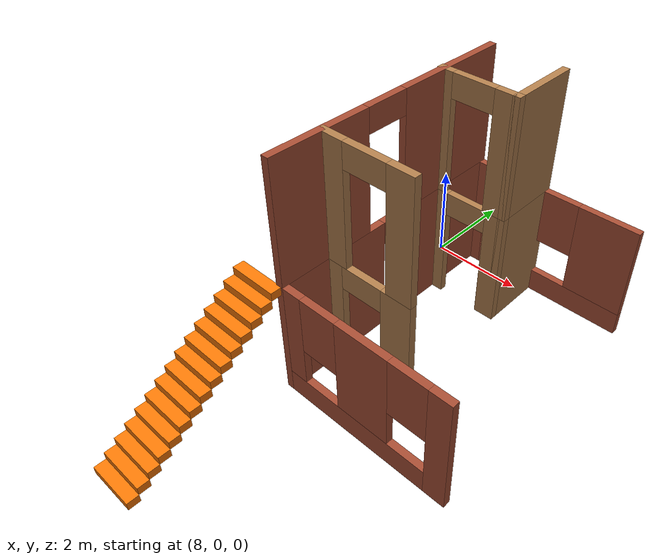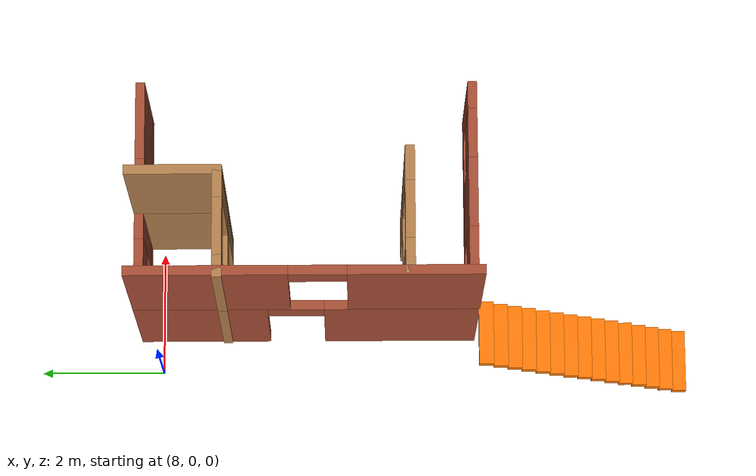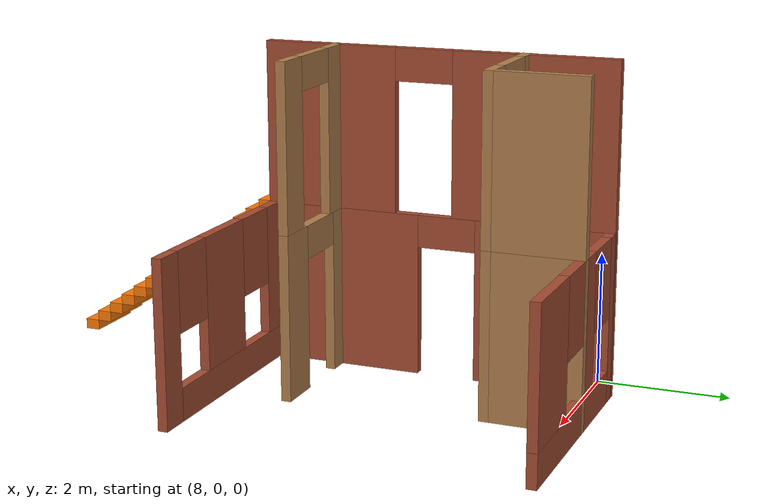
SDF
<sdf version="1.6">
 <model name="Building">
  <pose>-0.047811 -4.11763 0 0 -0 0</pose>
  <link name="Stairs_2">
   <visual name="Stairs_2_Visual_0">
    <pose>8.19045 -4.38108 0.083333 0 -0 -3.14159</pose>
    <geometry><box><size>1 0.233333 0.166667</size></box></geometry>
    <material>
     <script><uri>file://media/materials/scripts/gazebo.material</uri><name>Gazebo/Grey</name></script>
     <ambient>0.996078 0.47451 0.0196078 1</ambient>
    </material>
    <meta><layer>0</layer></meta>
   </visual>
   <collision name="Stairs_2_Collision_0">
    <geometry><box><size>1 0.233333 0.166667</size></box></geometry>
    <pose>8.19045 -4.38108 0.083333 0 -0 -3.14159</pose>
   </collision>
   <visual name="Stairs_2_Visual_1">
    <pose>8.19045 -4.14774 0.25 0 -0 -3.14159</pose>
    <geometry><box><size>1 0.233333 0.166667</size></box></geometry>
    <material>
     <script><uri>file://media/materials/scripts/gazebo.material</uri><name>Gazebo/Grey</name></script>
     <ambient>0.996078 0.47451 0.0196078 1</ambient>
    </material>
    <meta><layer>0</layer></meta>
   </visual>
   <collision name="Stairs_2_Collision_1">
    <geometry><box><size>1 0.233333 0.166667</size></box></geometry>
    <pose>8.19045 -4.14774 0.25 0 -0 -3.14159</pose>
   </collision>
   <visual name="Stairs_2_Visual_2">
    <pose>8.19045 -3.91441 0.416667 0 -0 -3.14159</pose>
    <geometry><box><size>1 0.233333 0.166667</size></box></geometry>
    <material>
     <script><uri>file://media/materials/scripts/gazebo.material</uri><name>Gazebo/Grey</name></script>
     <ambient>0.996078 0.47451 0.0196078 1</ambient>
    </material>
    <meta><layer>0</layer></meta>
   </visual>
   <collision name="Stairs_2_Collision_2">
    <geometry><box><size>1 0.233333 0.166667</size></box></geometry>
    <pose>8.19045 -3.91441 0.416667 0 -0 -3.14159</pose>
   </collision>
   <visual name="Stairs_2_Visual_3">
    <pose>8.19045 -3.68108 0.583333 0 -0 -3.14159</pose>
    <geometry><box><size>1 0.233333 0.166667</size></box></geometry>
    <material>
     <script><uri>file://media/materials/scripts/gazebo.material</uri><name>Gazebo/Grey</name></script>
     <ambient>0.996078 0.47451 0.0196078 1</ambient>
    </material>
    <meta><layer>0</layer></meta>
   </visual>
   <collision name="Stairs_2_Collision_3">
    <geometry><box><size>1 0.233333 0.166667</size></box></geometry>
    <pose>8.19045 -3.68108 0.583333 0 -0 -3.14159</pose>
   </collision>
   <visual name="Stairs_2_Visual_4">
    <pose>8.19045 -3.44774 0.75 0 -0 -3.14159</pose>
    <geometry><box><size>1 0.233333 0.166667</size></box></geometry>
    <material>
     <script><uri>file://media/materials/scripts/gazebo.material</uri><name>Gazebo/Grey</name></script>
     <ambient>0.996078 0.47451 0.0196078 1</ambient>
    </material>
    <meta><layer>0</layer></meta>
   </visual>
   <collision name="Stairs_2_Collision_4">
    <geometry><box><size>1 0.233333 0.166667</size></box></geometry>
    <pose>8.19045 -3.44774 0.75 0 -0 -3.14159</pose>
   </collision>
   <visual name="Stairs_2_Visual_5">
    <pose>8.19045 -3.21441 0.916667 0 -0 -3.14159</pose>
    <geometry><box><size>1 0.233333 0.166667</size></box></geometry>
    <material>
     <script><uri>file://media/materials/scripts/gazebo.material</uri><name>Gazebo/Grey</name></script>
     <ambient>0.996078 0.47451 0.0196078 1</ambient>
    </material>
    <meta><layer>0</layer></meta>
   </visual>
   <collision name="Stairs_2_Collision_5">
    <geometry><box><size>1 0.233333 0.166667</size></box></geometry>
    <pose>8.19045 -3.21441 0.916667 0 -0 -3.14159</pose>
   </collision>
   <visual name="Stairs_2_Visual_6">
    <pose>8.19045 -2.98108 1.08333 0 -0 -3.14159</pose>
    <geometry><box><size>1 0.233333 0.166667</size></box></geometry>
    <material>
     <script><uri>file://media/materials/scripts/gazebo.material</uri><name>Gazebo/Grey</name></script>
     <ambient>0.996078 0.47451 0.0196078 1</ambient>
    </material>
    <meta><layer>0</layer></meta>
   </visual>
   <collision name="Stairs_2_Collision_6">
    <geometry><box><size>1 0.233333 0.166667</size></box></geometry>
    <pose>8.19045 -2.98108 1.08333 0 -0 -3.14159</pose>
   </collision>
   <visual name="Stairs_2_Visual_7">
    <pose>8.19045 -2.74774 1.25 0 -0 -3.14159</pose>
    <geometry><box><size>1 0.233333 0.166667</size></box></geometry>
    <material>
     <script><uri>file://media/materials/scripts/gazebo.material</uri><name>Gazebo/Grey</name></script>
     <ambient>0.996078 0.47451 0.0196078 1</ambient>
    </material>
    <meta><layer>0</layer></meta>
   </visual>
   <collision name="Stairs_2_Collision_7">
    <geometry><box><size>1 0.233333 0.166667</size></box></geometry>
    <pose>8.19045 -2.74774 1.25 0 -0 -3.14159</pose>
   </collision>
   <visual name="Stairs_2_Visual_8">
    <pose>8.19045 -2.51441 1.41667 0 -0 -3.14159</pose>
    <geometry><box><size>1 0.233333 0.166667</size></box></geometry>
    <material>
     <script><uri>file://media/materials/scripts/gazebo.material</uri><name>Gazebo/Grey</name></script>
     <ambient>0.996078 0.47451 0.0196078 1</ambient>
    </material>
    <meta><layer>0</layer></meta>
   </visual>
   <collision name="Stairs_2_Collision_8">
    <geometry><box><size>1 0.233333 0.166667</size></box></geometry>
    <pose>8.19045 -2.51441 1.41667 0 -0 -3.14159</pose>
   </collision>
   <visual name="Stairs_2_Visual_9">
    <pose>8.19045 -2.28108 1.58333 0 -0 -3.14159</pose>
    <geometry><box><size>1 0.233333 0.166667</size></box></geometry>
    <material>
     <script><uri>file://media/materials/scripts/gazebo.material</uri><name>Gazebo/Grey</name></script>
     <ambient>0.996078 0.47451 0.0196078 1</ambient>
    </material>
    <meta><layer>0</layer></meta>
   </visual>
   <collision name="Stairs_2_Collision_9">
    <geometry><box><size>1 0.233333 0.166667</size></box></geometry>
    <pose>8.19045 -2.28108 1.58333 0 -0 -3.14159</pose>
   </collision>
   <visual name="Stairs_2_Visual_10">
    <pose>8.19045 -2.04774 1.75 0 -0 -3.14159</pose>
    <geometry><box><size>1 0.233333 0.166667</size></box></geometry>
    <material>
     <script><uri>file://media/materials/scripts/gazebo.material</uri><name>Gazebo/Grey</name></script>
     <ambient>0.996078 0.47451 0.0196078 1</ambient>
    </material>
    <meta><layer>0</layer></meta>
   </visual>
   <collision name="Stairs_2_Collision_10">
    <geometry><box><size>1 0.233333 0.166667</size></box></geometry>
    <pose>8.19045 -2.04774 1.75 0 -0 -3.14159</pose>
   </collision>
   <visual name="Stairs_2_Visual_11">
    <pose>8.19045 -1.81441 1.91667 0 -0 -3.14159</pose>
    <geometry><box><size>1 0.233333 0.166667</size></box></geometry>
    <material>
     <script><uri>file://media/materials/scripts/gazebo.material</uri><name>Gazebo/Grey</name></script>
     <ambient>0.996078 0.47451 0.0196078 1</ambient>
    </material>
    <meta><layer>0</layer></meta>
   </visual>
   <collision name="Stairs_2_Collision_11">
    <geometry><box><size>1 0.233333 0.166667</size></box></geometry>
    <pose>8.19045 -1.81441 1.91667 0 -0 -3.14159</pose>
   </collision>
   <visual name="Stairs_2_Visual_12">
    <pose>8.19045 -1.58108 2.08333 0 -0 -3.14159</pose>
    <geometry><box><size>1 0.233333 0.166667</size></box></geometry>
    <material>
     <script><uri>file://media/materials/scripts/gazebo.material</uri><name>Gazebo/Grey</name></script>
     <ambient>0.996078 0.47451 0.0196078 1</ambient>
    </material>
    <meta><layer>0</layer></meta>
   </visual>
   <collision name="Stairs_2_Collision_12">
    <geometry><box><size>1 0.233333 0.166667</size></box></geometry>
    <pose>8.19045 -1.58108 2.08333 0 -0 -3.14159</pose>
   </collision>
   <visual name="Stairs_2_Visual_13">
    <pose>8.19045 -1.34774 2.25 0 -0 -3.14159</pose>
    <geometry><box><size>1 0.233333 0.166667</size></box></geometry>
    <material>
     <script><uri>file://media/materials/scripts/gazebo.material</uri><name>Gazebo/Grey</name></script>
     <ambient>0.996078 0.47451 0.0196078 1</ambient>
    </material>
    <meta><layer>0</layer></meta>
   </visual>
   <collision name="Stairs_2_Collision_13">
    <geometry><box><size>1 0.233333 0.166667</size></box></geometry>
    <pose>8.19045 -1.34774 2.25 0 -0 -3.14159</pose>
   </collision>
   <visual name="Stairs_2_Visual_14">
    <pose>8.19045 -1.11441 2.41667 0 -0 -3.14159</pose>
    <geometry><box><size>1 0.233333 0.166667</size></box></geometry>
    <material>
     <script><uri>file://media/materials/scripts/gazebo.material</uri><name>Gazebo/Grey</name></script>
     <ambient>0.996078 0.47451 0.0196078 1</ambient>
    </material>
    <meta><layer>0</layer></meta>
   </visual>
   <collision name="Stairs_2_Collision_14">
    <geometry><box><size>1 0.233333 0.166667</size></box></geometry>
    <pose>8.19045 -1.11441 2.41667 0 -0 -3.14159</pose>
   </collision>
  </link>
  <link name="Wall_25">
   <pose>8.65306 1.73144 0 0 -0 1.5708</pose>
   <visual name="Wall_25_Visual_0">
    <pose>-1.51497 0 1.25 0 -0 0</pose>
    <geometry><box><size>2.47006 0.15 2.5</size></box></geometry>
    <material>
     <script><uri>file://media/materials/scripts/gazebo.material</uri><name>Gazebo/Bricks</name></script>
     <ambient>1 1 1 1</ambient>
    </material>
    <meta><layer>0</layer></meta>
   </visual>
   <collision name="Wall_25_Collision_0">
    <geometry><box><size>2.47006 0.15 2.5</size></box></geometry>
    <pose>-1.51497 0 1.25 0 -0 0</pose>
   </collision>
   <visual name="Wall_25_Visual_1">
    <pose>1.68503 0 1.25 0 -0 0</pose>
    <geometry><box><size>2.12994 0.15 2.5</size></box></geometry>
    <material>
     <script><uri>file://media/materials/scripts/gazebo.material</uri><name>Gazebo/Bricks</name></script>
     <ambient>1 1 1 1</ambient>
    </material>
    <meta><layer>0</layer></meta>
   </visual>
   <collision name="Wall_25_Collision_1">
    <geometry><box><size>2.12994 0.15 2.5</size></box></geometry>
    <pose>1.68503 0 1.25 0 -0 0</pose>
   </collision>
   <visual name="Wall_25_Visual_2">
    <pose>0.170065 0 2.25 0 -0 0</pose>
    <geometry><box><size>0.9 0.15 0.5</size></box></geometry>
    <material>
     <script><uri>file://media/materials/scripts/gazebo.material</uri><name>Gazebo/Bricks</name></script>
     <ambient>1 1 1 1</ambient>
    </material>
    <meta><layer>0</layer></meta>
   </visual>
   <collision name="Wall_25_Collision_2">
    <geometry><box><size>0.9 0.15 0.5</size></box></geometry>
    <pose>0.170065 0 2.25 0 -0 0</pose>
   </collision>
  </link>
  <link name="Wall_26">
   <pose>10.4531 4.40644 0 0 -0 0</pose>
   <visual name="Wall_26_Visual_0">
    <pose>-1.69054 0 1.25 0 -0 0</pose>
    <geometry><box><size>0.368918 0.15 2.5</size></box></geometry>
    <material>
     <script><uri>file://media/materials/scripts/gazebo.material</uri><name>Gazebo/Bricks</name></script>
     <ambient>1 1 1 1</ambient>
    </material>
    <meta><layer>0</layer></meta>
   </visual>
   <collision name="Wall_26_Collision_0">
    <geometry><box><size>0.368918 0.15 2.5</size></box></geometry>
    <pose>-1.69054 0 1.25 0 -0 0</pose>
   </collision>
   <visual name="Wall_26_Visual_1">
    <pose>0.184459 0 0.25 0 -0 0</pose>
    <geometry><box><size>3.38108 0.15 0.5</size></box></geometry>
    <material>
     <script><uri>file://media/materials/scripts/gazebo.material</uri><name>Gazebo/Bricks</name></script>
     <ambient>1 1 1 1</ambient>
    </material>
    <meta><layer>0</layer></meta>
   </visual>
   <collision name="Wall_26_Collision_1">
    <geometry><box><size>3.38108 0.15 0.5</size></box></geometry>
    <pose>0.184459 0 0.25 0 -0 0</pose>
   </collision>
   <visual name="Wall_26_Visual_2">
    <pose>-0.44686 0 1.5 0 -0 0</pose>
    <geometry><box><size>0.518444 0.15 2</size></box></geometry>
    <material>
     <script><uri>file://media/materials/scripts/gazebo.material</uri><name>Gazebo/Bricks</name></script>
     <ambient>1 1 1 1</ambient>
    </material>
    <meta><layer>0</layer></meta>
   </visual>
   <collision name="Wall_26_Collision_2">
    <geometry><box><size>0.518444 0.15 2</size></box></geometry>
    <pose>-0.44686 0 1.5 0 -0 0</pose>
   </collision>
   <visual name="Wall_26_Visual_3">
    <pose>1.24368 0 1.5 0 -0 0</pose>
    <geometry><box><size>1.26264 0.15 2</size></box></geometry>
    <material>
     <script><uri>file://media/materials/scripts/gazebo.material</uri><name>Gazebo/Bricks</name></script>
     <ambient>1 1 1 1</ambient>
    </material>
    <meta><layer>0</layer></meta>
   </visual>
   <collision name="Wall_26_Collision_3">
    <geometry><box><size>1.26264 0.15 2</size></box></geometry>
    <pose>1.24368 0 1.5 0 -0 0</pose>
   </collision>
   <visual name="Wall_26_Visual_4">
    <pose>-1.10608 0 1.9 0 -0 0</pose>
    <geometry><box><size>0.8 0.15 1.2</size></box></geometry>
    <material>
     <script><uri>file://media/materials/scripts/gazebo.material</uri><name>Gazebo/Bricks</name></script>
     <ambient>1 1 1 1</ambient>
    </material>
    <meta><layer>0</layer></meta>
   </visual>
   <collision name="Wall_26_Collision_4">
    <geometry><box><size>0.8 0.15 1.2</size></box></geometry>
    <pose>-1.10608 0 1.9 0 -0 0</pose>
   </collision>
   <visual name="Wall_26_Visual_5">
    <pose>0.212362 0 1.9 0 -0 0</pose>
    <geometry><box><size>0.8 0.15 1.2</size></box></geometry>
    <material>
     <script><uri>file://media/materials/scripts/gazebo.material</uri><name>Gazebo/Bricks</name></script>
     <ambient>1 1 1 1</ambient>
    </material>
    <meta><layer>0</layer></meta>
   </visual>
   <collision name="Wall_26_Collision_5">
    <geometry><box><size>0.8 0.15 1.2</size></box></geometry>
    <pose>0.212362 0 1.9 0 -0 0</pose>
   </collision>
  </link>
  <link name="Wall_28">
   <pose>10.4531 -0.943557 0 0 -0 3.14159</pose>
   <visual name="Wall_28_Visual_0">
    <pose>-1.64847 0 1.25 0 -0 0</pose>
    <geometry><box><size>0.453066 0.15 2.5</size></box></geometry>
    <material>
     <script><uri>file://media/materials/scripts/gazebo.material</uri><name>Gazebo/Bricks</name></script>
     <ambient>1 1 1 1</ambient>
    </material>
    <meta><layer>0</layer></meta>
   </visual>
   <collision name="Wall_28_Collision_0">
    <geometry><box><size>0.453066 0.15 2.5</size></box></geometry>
    <pose>-1.64847 0 1.25 0 -0 0</pose>
   </collision>
   <visual name="Wall_28_Visual_1">
    <pose>0.226533 0 0.25 0 -0 0</pose>
    <geometry><box><size>3.29693 0.15 0.5</size></box></geometry>
    <material>
     <script><uri>file://media/materials/scripts/gazebo.material</uri><name>Gazebo/Bricks</name></script>
     <ambient>1 1 1 1</ambient>
    </material>
    <meta><layer>0</layer></meta>
   </visual>
   <collision name="Wall_28_Collision_1">
    <geometry><box><size>3.29693 0.15 0.5</size></box></geometry>
    <pose>0.226533 0 0.25 0 -0 0</pose>
   </collision>
   <visual name="Wall_28_Visual_2">
    <pose>-0.050448 0 1.5 0 -0 0</pose>
    <geometry><box><size>1.14297 0.15 2</size></box></geometry>
    <material>
     <script><uri>file://media/materials/scripts/gazebo.material</uri><name>Gazebo/Bricks</name></script>
     <ambient>1 1 1 1</ambient>
    </material>
    <meta><layer>0</layer></meta>
   </visual>
   <collision name="Wall_28_Collision_2">
    <geometry><box><size>1.14297 0.15 2</size></box></geometry>
    <pose>-0.050448 0 1.5 0 -0 0</pose>
   </collision>
   <visual name="Wall_28_Visual_3">
    <pose>1.59802 0 1.5 0 -0 0</pose>
    <geometry><box><size>0.553963 0.15 2</size></box></geometry>
    <material>
     <script><uri>file://media/materials/scripts/gazebo.material</uri><name>Gazebo/Bricks</name></script>
     <ambient>1 1 1 1</ambient>
    </material>
    <meta><layer>0</layer></meta>
   </visual>
   <collision name="Wall_28_Collision_3">
    <geometry><box><size>0.553963 0.15 2</size></box></geometry>
    <pose>1.59802 0 1.5 0 -0 0</pose>
   </collision>
   <visual name="Wall_28_Visual_4">
    <pose>-1.02193 0 1.9 0 -0 0</pose>
    <geometry><box><size>0.8 0.15 1.2</size></box></geometry>
    <material>
     <script><uri>file://media/materials/scripts/gazebo.material</uri><name>Gazebo/Bricks</name></script>
     <ambient>1 1 1 1</ambient>
    </material>
    <meta><layer>0</layer></meta>
   </visual>
   <collision name="Wall_28_Collision_4">
    <geometry><box><size>0.8 0.15 1.2</size></box></geometry>
    <pose>-1.02193 0 1.9 0 -0 0</pose>
   </collision>
   <visual name="Wall_28_Visual_5">
    <pose>0.921037 0 1.9 0 -0 0</pose>
    <geometry><box><size>0.8 0.15 1.2</size></box></geometry>
    <material>
     <script><uri>file://media/materials/scripts/gazebo.material</uri><name>Gazebo/Bricks</name></script>
     <ambient>1 1 1 1</ambient>
    </material>
    <meta><layer>0</layer></meta>
   </visual>
   <collision name="Wall_28_Collision_5">
    <geometry><box><size>0.8 0.15 1.2</size></box></geometry>
    <pose>0.921037 0 1.9 0 -0 0</pose>
   </collision>
  </link>
  <link name="Wall_30">
   <pose>9.42994 3.05804 0 0 -0 0</pose>
   <visual name="Wall_30_Visual_0">
    <pose>-0.66928 0 1.25 0 -0 0</pose>
    <geometry><box><size>0.411441 0.15 2.5</size></box></geometry>
    <material>
     <script><uri>file://media/materials/scripts/gazebo.material</uri><name>Gazebo/Wood</name></script>
     <ambient>1 1 1 1</ambient>
    </material>
    <meta><layer>0</layer></meta>
   </visual>
   <collision name="Wall_30_Collision_0">
    <geometry><box><size>0.411441 0.15 2.5</size></box></geometry>
    <pose>-0.66928 0 1.25 0 -0 0</pose>
   </collision>
   <visual name="Wall_30_Visual_1">
    <pose>0.65572 0 1.25 0 -0 0</pose>
    <geometry><box><size>0.438559 0.15 2.5</size></box></geometry>
    <material>
     <script><uri>file://media/materials/scripts/gazebo.material</uri><name>Gazebo/Wood</name></script>
     <ambient>1 1 1 1</ambient>
    </material>
    <meta><layer>0</layer></meta>
   </visual>
   <collision name="Wall_30_Collision_1">
    <geometry><box><size>0.438559 0.15 2.5</size></box></geometry>
    <pose>0.65572 0 1.25 0 -0 0</pose>
   </collision>
   <visual name="Wall_30_Visual_2">
    <pose>-0.013559 0 2.25 0 -0 0</pose>
    <geometry><box><size>0.9 0.15 0.5</size></box></geometry>
    <material>
     <script><uri>file://media/materials/scripts/gazebo.material</uri><name>Gazebo/Wood</name></script>
     <ambient>1 1 1 1</ambient>
    </material>
    <meta><layer>0</layer></meta>
   </visual>
   <collision name="Wall_30_Collision_2">
    <geometry><box><size>0.9 0.15 0.5</size></box></geometry>
    <pose>-0.013559 0 2.25 0 -0 0</pose>
   </collision>
  </link>
  <link name="Wall_31">
   <collision name="Wall_31_Collision">
    <geometry><box><size>1.5 0.15 2.5</size></box></geometry>
    <pose>0 0 1.25 0 -0 0</pose>
   </collision>
   <visual name="Wall_31_Visual">
    <pose>0 0 1.25 0 -0 0</pose>
    <geometry><box><size>1.5 0.15 2.5</size></box></geometry>
    <material>
     <script><uri>file://media/materials/scripts/gazebo.material</uri><name>Gazebo/Wood</name></script>
     <ambient>1 1 1 1</ambient>
    </material>
    <meta><layer>0</layer></meta>
   </visual>
   <pose>10.2299 3.73304 0 0 -0 1.5708</pose>
  </link>
  <link name="Wall_44">
   <pose>9.60164 0.120451 0 0 -0 3.14159</pose>
   <visual name="Wall_44_Visual_0">
    <pose>-0.667061 0 1.25 0 -0 0</pose>
    <geometry><box><size>0.665877 0.15 2.5</size></box></geometry>
    <material>
     <script><uri>file://media/materials/scripts/gazebo.material</uri><name>Gazebo/Wood</name></script>
     <ambient>1 1 1 1</ambient>
    </material>
    <meta><layer>0</layer></meta>
   </visual>
   <collision name="Wall_44_Collision_0">
    <geometry><box><size>0.665877 0.15 2.5</size></box></geometry>
    <pose>-0.667061 0 1.25 0 -0 0</pose>
   </collision>
   <visual name="Wall_44_Visual_1">
    <pose>0.782939 0 1.25 0 -0 0</pose>
    <geometry><box><size>0.434123 0.15 2.5</size></box></geometry>
    <material>
     <script><uri>file://media/materials/scripts/gazebo.material</uri><name>Gazebo/Wood</name></script>
     <ambient>1 1 1 1</ambient>
    </material>
    <meta><layer>0</layer></meta>
   </visual>
   <collision name="Wall_44_Collision_1">
    <geometry><box><size>0.434123 0.15 2.5</size></box></geometry>
    <pose>0.782939 0 1.25 0 -0 0</pose>
   </collision>
   <visual name="Wall_44_Visual_2">
    <pose>0.115877 0 2.25 0 -0 0</pose>
    <geometry><box><size>0.9 0.15 0.5</size></box></geometry>
    <material>
     <script><uri>file://media/materials/scripts/gazebo.material</uri><name>Gazebo/Wood</name></script>
     <ambient>1 1 1 1</ambient>
    </material>
    <meta><layer>0</layer></meta>
   </visual>
   <collision name="Wall_44_Collision_2">
    <geometry><box><size>0.9 0.15 0.5</size></box></geometry>
    <pose>0.115877 0 2.25 0 -0 0</pose>
   </collision>
  </link>
  <link name="Wall_83">
   <pose>8.65306 1.73144 2.5 0 -0 1.5708</pose>
   <visual name="Wall_83_Visual_0">
    <pose>-1.70001 0 1.25 0 -0 0</pose>
    <geometry><box><size>2.09998 0.15 2.5</size></box></geometry>
    <material>
     <script><uri>file://media/materials/scripts/gazebo.material</uri><name>Gazebo/Bricks</name></script>
     <ambient>1 1 1 1</ambient>
    </material>
    <meta><layer>1</layer></meta>
   </visual>
   <collision name="Wall_83_Collision_0">
    <geometry><box><size>2.09998 0.15 2.5</size></box></geometry>
    <pose>-1.70001 0 1.25 0 -0 0</pose>
   </collision>
   <visual name="Wall_83_Visual_1">
    <pose>1.49999 0 1.25 0 -0 0</pose>
    <geometry><box><size>2.50002 0.15 2.5</size></box></geometry>
    <material>
     <script><uri>file://media/materials/scripts/gazebo.material</uri><name>Gazebo/Bricks</name></script>
     <ambient>1 1 1 1</ambient>
    </material>
    <meta><layer>1</layer></meta>
   </visual>
   <collision name="Wall_83_Collision_1">
    <geometry><box><size>2.50002 0.15 2.5</size></box></geometry>
    <pose>1.49999 0 1.25 0 -0 0</pose>
   </collision>
   <visual name="Wall_83_Visual_2">
    <pose>-0.200025 0 2.25 0 -0 0</pose>
    <geometry><box><size>0.9 0.15 0.5</size></box></geometry>
    <material>
     <script><uri>file://media/materials/scripts/gazebo.material</uri><name>Gazebo/Bricks</name></script>
     <ambient>1 1 1 1</ambient>
    </material>
    <meta><layer>1</layer></meta>
   </visual>
   <collision name="Wall_83_Collision_2">
    <geometry><box><size>0.9 0.15 0.5</size></box></geometry>
    <pose>-0.200025 0 2.25 0 -0 0</pose>
   </collision>
  </link>
  <link name="Wall_87">
   <pose>9.42993 3.05804 2.5 0 -0 0</pose>
   <visual name="Wall_87_Visual_0">
    <pose>-0.703975 0 1.25 0 -0 0</pose>
    <geometry><box><size>0.342049 0.15 2.5</size></box></geometry>
    <material>
     <script><uri>file://media/materials/scripts/gazebo.material</uri><name>Gazebo/Wood</name></script>
     <ambient>1 1 1 1</ambient>
    </material>
    <meta><layer>1</layer></meta>
   </visual>
   <collision name="Wall_87_Collision_0">
    <geometry><box><size>0.342049 0.15 2.5</size></box></geometry>
    <pose>-0.703975 0 1.25 0 -0 0</pose>
   </collision>
   <visual name="Wall_87_Visual_1">
    <pose>0.621025 0 1.25 0 -0 0</pose>
    <geometry><box><size>0.507951 0.15 2.5</size></box></geometry>
    <material>
     <script><uri>file://media/materials/scripts/gazebo.material</uri><name>Gazebo/Wood</name></script>
     <ambient>1 1 1 1</ambient>
    </material>
    <meta><layer>1</layer></meta>
   </visual>
   <collision name="Wall_87_Collision_1">
    <geometry><box><size>0.507951 0.15 2.5</size></box></geometry>
    <pose>0.621025 0 1.25 0 -0 0</pose>
   </collision>
   <visual name="Wall_87_Visual_2">
    <pose>-0.082951 0 2.25 0 -0 0</pose>
    <geometry><box><size>0.9 0.15 0.5</size></box></geometry>
    <material>
     <script><uri>file://media/materials/scripts/gazebo.material</uri><name>Gazebo/Wood</name></script>
     <ambient>1 1 1 1</ambient>
    </material>
    <meta><layer>1</layer></meta>
   </visual>
   <collision name="Wall_87_Collision_2">
    <geometry><box><size>0.9 0.15 0.5</size></box></geometry>
    <pose>-0.082951 0 2.25 0 -0 0</pose>
   </collision>
  </link>
  <link name="Wall_88">
   <collision name="Wall_88_Collision">
    <geometry><box><size>1.5 0.15 2.5</size></box></geometry>
    <pose>0 0 1.25 0 -0 0</pose>
   </collision>
   <visual name="Wall_88_Visual">
    <pose>0 0 1.25 0 -0 0</pose>
    <geometry><box><size>1.5 0.15 2.5</size></box></geometry>
    <material>
     <script><uri>file://media/materials/scripts/gazebo.material</uri><name>Gazebo/Wood</name></script>
     <ambient>1 1 1 1</ambient>
    </material>
    <meta><layer>1</layer></meta>
   </visual>
   <pose>10.2299 3.73304 2.5 0 -0 1.5708</pose>
  </link>
  <link name="Wall_95">
   <pose>9.60164 0.120451 2.5 0 -0 3.14159</pose>
   <visual name="Wall_95_Visual_0">
    <pose>-0.724887 0 1.25 0 -0 0</pose>
    <geometry><box><size>0.550225 0.15 2.5</size></box></geometry>
    <material>
     <script><uri>file://media/materials/scripts/gazebo.material</uri><name>Gazebo/Wood</name></script>
     <ambient>1 1 1 1</ambient>
    </material>
    <meta><layer>1</layer></meta>
   </visual>
   <collision name="Wall_95_Collision_0">
    <geometry><box><size>0.550225 0.15 2.5</size></box></geometry>
    <pose>-0.724887 0 1.25 0 -0 0</pose>
   </collision>
   <visual name="Wall_95_Visual_1">
    <pose>0.725113 0 1.25 0 -0 0</pose>
    <geometry><box><size>0.549775 0.15 2.5</size></box></geometry>
    <material>
     <script><uri>file://media/materials/scripts/gazebo.material</uri><name>Gazebo/Wood</name></script>
     <ambient>1 1 1 1</ambient>
    </material>
    <meta><layer>1</layer></meta>
   </visual>
   <collision name="Wall_95_Collision_1">
    <geometry><box><size>0.549775 0.15 2.5</size></box></geometry>
    <pose>0.725113 0 1.25 0 -0 0</pose>
   </collision>
   <visual name="Wall_95_Visual_2">
    <pose>0.000225 0 2.25 0 -0 0</pose>
    <geometry><box><size>0.9 0.15 0.5</size></box></geometry>
    <material>
     <script><uri>file://media/materials/scripts/gazebo.material</uri><name>Gazebo/Wood</name></script>
     <ambient>1 1 1 1</ambient>
    </material>
    <meta><layer>1</layer></meta>
   </visual>
   <collision name="Wall_95_Collision_2">
    <geometry><box><size>0.9 0.15 0.5</size></box></geometry>
    <pose>0.000225 0 2.25 0 -0 0</pose>
   </collision>
  </link>
  <static>1</static>
 </model>
</sdf>
